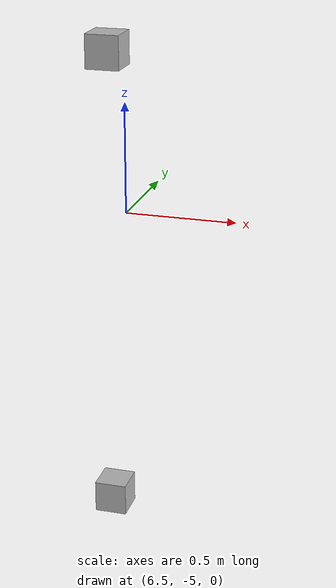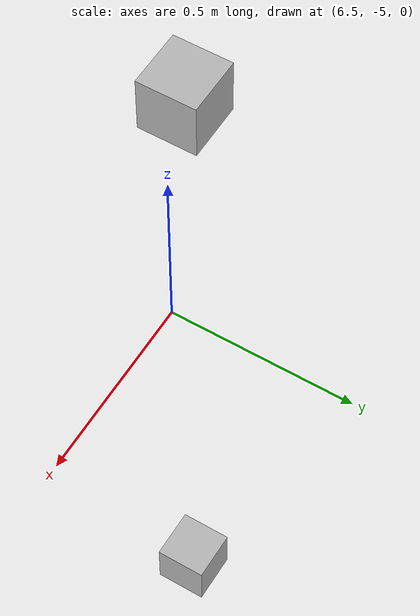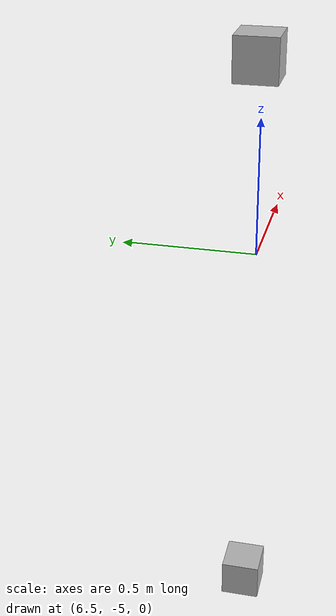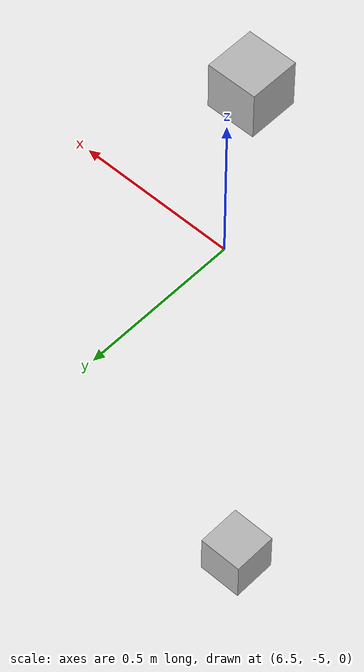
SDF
<sdf version="1.7">
 <world name="default">
  <model name="orthogonal_747_2.000.15_TS">
   <static>1</static>
   <link name="u_link_0_0_6">
    <inertial>
     <mass>1</mass>
     <inertia>
      <ixx>0.166667</ixx>
      <ixy>0</ixy>
      <ixz>0</ixz>
      <iyy>0.166667</iyy>
      <iyz>0</iyz>
      <izz>0.166667</izz>
     </inertia>
    </inertial>
    <pose>12.9 0 1.075 0 -0 0</pose>
    <visual name="visual_0">
     <laser_retro>141</laser_retro>
     <geometry><box><size>0.15 1e-06 0.15</size></box></geometry>
     <material>
      <script><name>Gazebo/Grey</name><uri>file://media/materials/scripts/gazebo.material</uri></script>
      <shader type="pixel"><normal_map>__default__</normal_map></shader>
      <ambient>0.678 0.498 0.659 1</ambient>
      <diffuse>0.7 0.7 0.7 1</diffuse>
      <specular>0.01 0.01 0.01 1</specular>
      <emissive>0 0 0 1</emissive>
     </material>
     <pose>0 -0.075 0 0 -0 0</pose>
     <transparency>1</transparency>
    </visual>
    <visual name="visual_1">
     <laser_retro>142</laser_retro>
     <geometry><box><size>0.15 1e-06 0.15</size></box></geometry>
     <material>
      <script><name>Gazebo/Grey</name><uri>file://media/materials/scripts/gazebo.material</uri></script>
      <shader type="pixel"><normal_map>__default__</normal_map></shader>
      <ambient>0.447 0.624 0.812 1</ambient>
      <diffuse>0.7 0.7 0.7 1</diffuse>
      <specular>0.01 0.01 0.01 1</specular>
      <emissive>0 0 0 1</emissive>
     </material>
     <pose>0 0.075 0 0 -0 0</pose>
     <transparency>1</transparency>
    </visual>
    <visual name="visual_2">
     <laser_retro>143</laser_retro>
     <geometry><box><size>0.15 0.15 1e-06</size></box></geometry>
     <material>
      <script><name>Gazebo/Grey</name><uri>file://media/materials/scripts/gazebo.material</uri></script>
      <shader type="pixel"><normal_map>__default__</normal_map></shader>
      <ambient>0.988 0.686 0.243 1</ambient>
      <diffuse>0.7 0.7 0.7 1</diffuse>
      <specular>0.01 0.01 0.01 1</specular>
      <emissive>0 0 0 1</emissive>
     </material>
     <pose>0 0 -0.075 0 -0 0</pose>
     <transparency>1</transparency>
    </visual>
    <visual name="visual_3">
     <laser_retro>144</laser_retro>
     <geometry><box><size>1e-06 0.15 0.15</size></box></geometry>
     <material>
      <script><name>Gazebo/Grey</name><uri>file://media/materials/scripts/gazebo.material</uri></script>
      <shader type="pixel"><normal_map>__default__</normal_map></shader>
      <ambient>0.988 0.914 0.31 1</ambient>
      <diffuse>0.7 0.7 0.7 1</diffuse>
      <specular>0.01 0.01 0.01 1</specular>
      <emissive>0 0 0 1</emissive>
     </material>
     <pose>0.075 0 0 0 -0 0</pose>
     <transparency>1</transparency>
    </visual>
    <visual name="visual_4">
     <laser_retro>145</laser_retro>
     <geometry><box><size>0.15 0.15 1e-06</size></box></geometry>
     <material>
      <script><name>Gazebo/Grey</name><uri>file://media/materials/scripts/gazebo.material</uri></script>
      <shader type="pixel"><normal_map>__default__</normal_map></shader>
      <ambient>0.937 0.161 0.161 1</ambient>
      <diffuse>0.7 0.7 0.7 1</diffuse>
      <specular>0.01 0.01 0.01 1</specular>
      <emissive>0 0 0 1</emissive>
     </material>
     <pose>0 0 0.075 0 -0 0</pose>
     <transparency>1</transparency>
    </visual>
    <visual name="visual_5">
     <laser_retro>146</laser_retro>
     <geometry><box><size>1e-06 0.15 0.15</size></box></geometry>
     <material>
      <script><name>Gazebo/Grey</name><uri>file://media/materials/scripts/gazebo.material</uri></script>
      <shader type="pixel"><normal_map>__default__</normal_map></shader>
      <ambient>0.541 0.886 0.204 1</ambient>
      <diffuse>0.7 0.7 0.7 1</diffuse>
      <specular>0.01 0.01 0.01 1</specular>
      <emissive>0 0 0 1</emissive>
     </material>
     <pose>-0.075 0 0 0 -0 0</pose>
     <transparency>1</transparency>
    </visual>
    <visual name="visual_texture">
     <geometry><box><size>0.149985 0.149985 0.149985</size></box></geometry>
     <material>
      <script>
       <uri>model://BASE_MODELS/simple_block_v2_textured/materials/scripts</uri>
       <uri>model://BASE_MODELS/simple_block_v2_textured/materials/textures</uri>
       <name>metal</name>
      </script>
     </material>
     <laser_retro>147</laser_retro>
    </visual>
    <collision name="collision">
     <geometry><box><size>0.15 0.15 0.15</size></box></geometry>
     <surface>
      <friction>
       <ode><mu>1</mu><mu2>1</mu2><fdir1>0 0 0</fdir1><slip1>0</slip1><slip2>0</slip2></ode>
       <torsional>
        <coefficient>1</coefficient>
        <patch_radius>0</patch_radius>
        <surface_radius>0</surface_radius>
        <use_patch_radius>1</use_patch_radius>
        <ode><slip>0</slip></ode>
       </torsional>
      </friction>
      <bounce><restitution_coefficient>0</restitution_coefficient><threshold>1e+06</threshold></bounce>
      <contact>
       <collide_without_contact>0</collide_without_contact>
       <collide_without_contact_bitmask>1</collide_without_contact_bitmask>
       <collide_bitmask>1</collide_bitmask>
       <ode>
        <soft_cfm>0</soft_cfm>
        <soft_erp>0.2</soft_erp>
        <kp>1e+13</kp>
        <kd>1</kd>
        <max_vel>0.01</max_vel>
        <min_depth>0</min_depth>
       </ode>
       <bullet>
        <split_impulse>1</split_impulse>
        <split_impulse_penetration_threshold>-0.01</split_impulse_penetration_threshold>
        <soft_cfm>0</soft_cfm>
        <soft_erp>0.2</soft_erp>
        <kp>1e+13</kp>
        <kd>1</kd>
       </bullet>
      </contact>
     </surface>
    </collision>
   </link>
   <link name="u_link_1_0_6">
    <inertial>
     <mass>1</mass>
     <inertia>
      <ixx>0.166667</ixx>
      <ixy>0</ixy>
      <ixz>0</ixz>
      <iyy>0.166667</iyy>
      <iyz>0</iyz>
      <izz>0.166667</izz>
     </inertia>
    </inertial>
    <pose>12.9 0 3.225 0 -0 0</pose>
    <visual name="visual_0">
     <laser_retro>932</laser_retro>
     <geometry><box><size>0.15 1e-06 0.15</size></box></geometry>
     <material>
      <script><name>Gazebo/Grey</name><uri>file://media/materials/scripts/gazebo.material</uri></script>
      <shader type="pixel"><normal_map>__default__</normal_map></shader>
      <ambient>0.678 0.498 0.659 1</ambient>
      <diffuse>0.7 0.7 0.7 1</diffuse>
      <specular>0.01 0.01 0.01 1</specular>
      <emissive>0 0 0 1</emissive>
     </material>
     <pose>0 -0.075 0 0 -0 0</pose>
     <transparency>1</transparency>
    </visual>
    <visual name="visual_1">
     <laser_retro>933</laser_retro>
     <geometry><box><size>0.15 1e-06 0.15</size></box></geometry>
     <material>
      <script><name>Gazebo/Grey</name><uri>file://media/materials/scripts/gazebo.material</uri></script>
      <shader type="pixel"><normal_map>__default__</normal_map></shader>
      <ambient>0.447 0.624 0.812 1</ambient>
      <diffuse>0.7 0.7 0.7 1</diffuse>
      <specular>0.01 0.01 0.01 1</specular>
      <emissive>0 0 0 1</emissive>
     </material>
     <pose>0 0.075 0 0 -0 0</pose>
     <transparency>1</transparency>
    </visual>
    <visual name="visual_2">
     <laser_retro>934</laser_retro>
     <geometry><box><size>0.15 0.15 1e-06</size></box></geometry>
     <material>
      <script><name>Gazebo/Grey</name><uri>file://media/materials/scripts/gazebo.material</uri></script>
      <shader type="pixel"><normal_map>__default__</normal_map></shader>
      <ambient>0.988 0.686 0.243 1</ambient>
      <diffuse>0.7 0.7 0.7 1</diffuse>
      <specular>0.01 0.01 0.01 1</specular>
      <emissive>0 0 0 1</emissive>
     </material>
     <pose>0 0 -0.075 0 -0 0</pose>
     <transparency>1</transparency>
    </visual>
    <visual name="visual_3">
     <laser_retro>935</laser_retro>
     <geometry><box><size>1e-06 0.15 0.15</size></box></geometry>
     <material>
      <script><name>Gazebo/Grey</name><uri>file://media/materials/scripts/gazebo.material</uri></script>
      <shader type="pixel"><normal_map>__default__</normal_map></shader>
      <ambient>0.988 0.914 0.31 1</ambient>
      <diffuse>0.7 0.7 0.7 1</diffuse>
      <specular>0.01 0.01 0.01 1</specular>
      <emissive>0 0 0 1</emissive>
     </material>
     <pose>0.075 0 0 0 -0 0</pose>
     <transparency>1</transparency>
    </visual>
    <visual name="visual_4">
     <laser_retro>936</laser_retro>
     <geometry><box><size>0.15 0.15 1e-06</size></box></geometry>
     <material>
      <script><name>Gazebo/Grey</name><uri>file://media/materials/scripts/gazebo.material</uri></script>
      <shader type="pixel"><normal_map>__default__</normal_map></shader>
      <ambient>0.937 0.161 0.161 1</ambient>
      <diffuse>0.7 0.7 0.7 1</diffuse>
      <specular>0.01 0.01 0.01 1</specular>
      <emissive>0 0 0 1</emissive>
     </material>
     <pose>0 0 0.075 0 -0 0</pose>
     <transparency>1</transparency>
    </visual>
    <visual name="visual_5">
     <laser_retro>937</laser_retro>
     <geometry><box><size>1e-06 0.15 0.15</size></box></geometry>
     <material>
      <script><name>Gazebo/Grey</name><uri>file://media/materials/scripts/gazebo.material</uri></script>
      <shader type="pixel"><normal_map>__default__</normal_map></shader>
      <ambient>0.541 0.886 0.204 1</ambient>
      <diffuse>0.7 0.7 0.7 1</diffuse>
      <specular>0.01 0.01 0.01 1</specular>
      <emissive>0 0 0 1</emissive>
     </material>
     <pose>-0.075 0 0 0 -0 0</pose>
     <transparency>1</transparency>
    </visual>
    <visual name="visual_texture">
     <geometry><box><size>0.149985 0.149985 0.149985</size></box></geometry>
     <material>
      <script>
       <uri>model://BASE_MODELS/simple_block_v2_textured/materials/scripts</uri>
       <uri>model://BASE_MODELS/simple_block_v2_textured/materials/textures</uri>
       <name>metal</name>
      </script>
     </material>
     <laser_retro>938</laser_retro>
    </visual>
    <collision name="collision">
     <geometry><box><size>0.15 0.15 0.15</size></box></geometry>
     <surface>
      <friction>
       <ode><mu>1</mu><mu2>1</mu2><fdir1>0 0 0</fdir1><slip1>0</slip1><slip2>0</slip2></ode>
       <torsional>
        <coefficient>1</coefficient>
        <patch_radius>0</patch_radius>
        <surface_radius>0</surface_radius>
        <use_patch_radius>1</use_patch_radius>
        <ode><slip>0</slip></ode>
       </torsional>
      </friction>
      <bounce><restitution_coefficient>0</restitution_coefficient><threshold>1e+06</threshold></bounce>
      <contact>
       <collide_without_contact>0</collide_without_contact>
       <collide_without_contact_bitmask>1</collide_without_contact_bitmask>
       <collide_bitmask>1</collide_bitmask>
       <ode>
        <soft_cfm>0</soft_cfm>
        <soft_erp>0.2</soft_erp>
        <kp>1e+13</kp>
        <kd>1</kd>
        <max_vel>0.01</max_vel>
        <min_depth>0</min_depth>
       </ode>
       <bullet>
        <split_impulse>1</split_impulse>
        <split_impulse_penetration_threshold>-0.01</split_impulse_penetration_threshold>
        <soft_cfm>0</soft_cfm>
        <soft_erp>0.2</soft_erp>
        <kp>1e+13</kp>
        <kd>1</kd>
       </bullet>
      </contact>
     </surface>
    </collision>
   </link>
   <pose>-6.47624 -5 -2.5 0 -0 0</pose>
  </model>
 </world>
</sdf>
